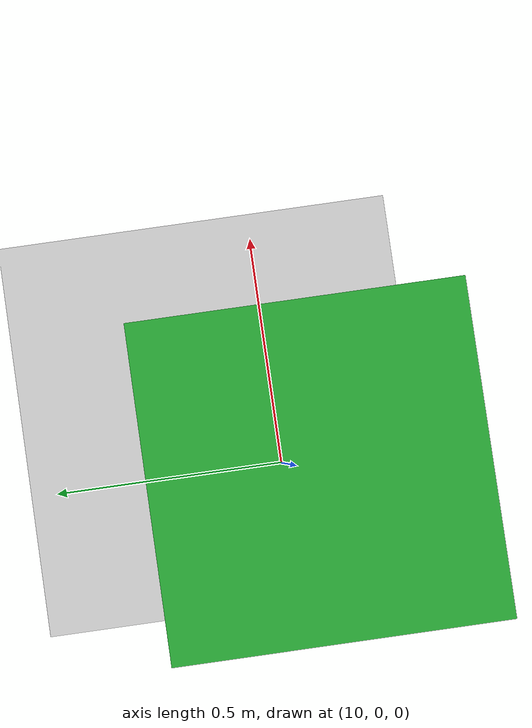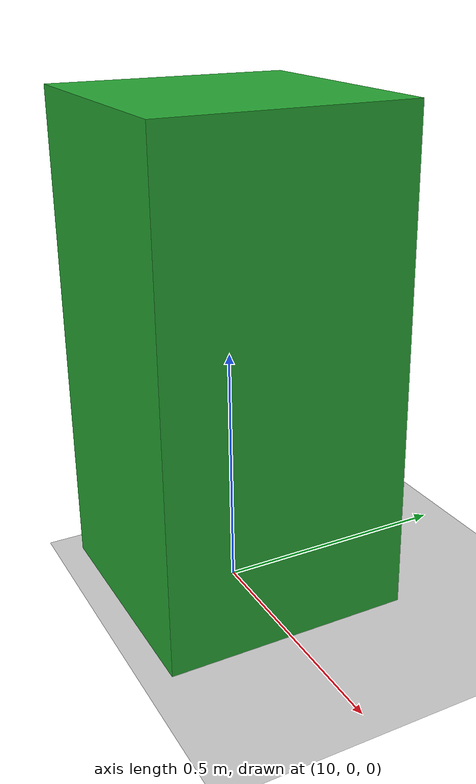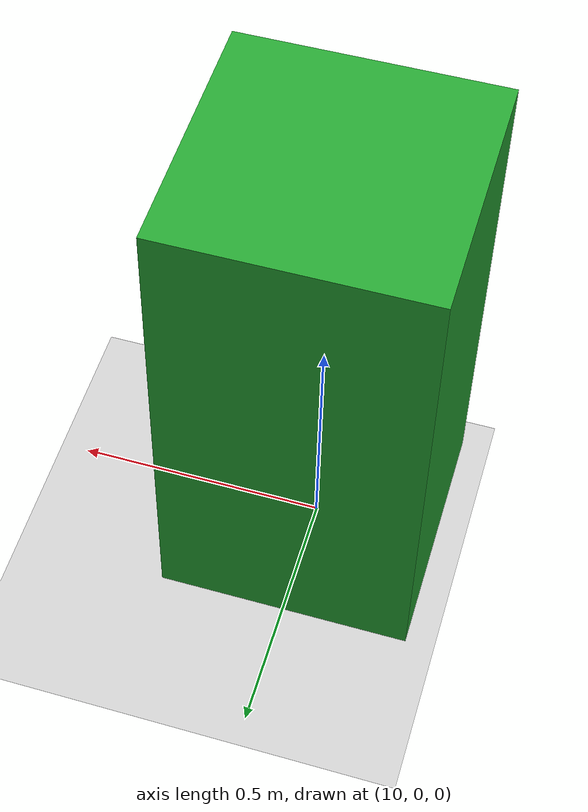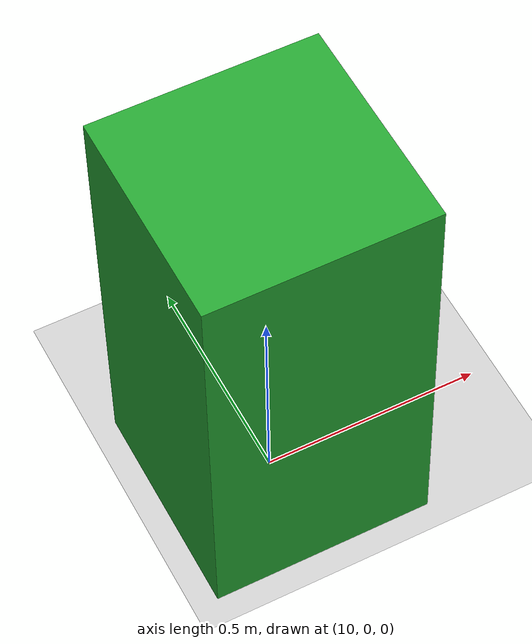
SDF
<?xml version="1.0"?>
<sdf version="1.4">
  <world name="default">

    <include>
      <uri>model://sun</uri>
    </include>
    <include>
      <uri>model://ground_plane</uri>
    </include>

    <!-- CUSTOM Ground Plane -->
    <model name="custom_ground_plane_box">
        <pose>10 0 0.5 0 0 0</pose>
      <link name="link">
        <inertial>
          <pose>0 0 0 0 0 0</pose>
          <mass>100</mass>
          <inertia>
            <ixx>3.33341666667e+3</ixx>
            <ixy>0.0</ixy>
            <ixz>0.0</ixz>
            <iyy>3.33341666667e+3</iyy>
            <iyz>0.0</iyz>
            <izz>6.66666666667e+3</izz>
          </inertia>
        </inertial>
        <collision name="collision">
          <geometry>
            <box>
              <size>0.5 0.5 1.0</size>
            </box>
          </geometry>
          <surface>
              <friction>
                <ode>
                  <mu>0</mu>
                  <mu2>0</mu2>
                </ode>
              </friction>
            </surface>
        </collision>

        <visual name="visual">
          <geometry>
            <box>
              <size>0.5 0.5 1.0</size>
            </box>
          </geometry>
          <material>
              <script>
                <uri>file://media/materials/scripts/gazebo.material</uri>
                <name>Gazebo/Green</name>
              </script>
            </material>
        </visual>
      </link>
      <plugin name="plannar_mover_plugin" filename="libplannar_mover_plugin.so"/>
    </model>

  </world>
</sdf>
